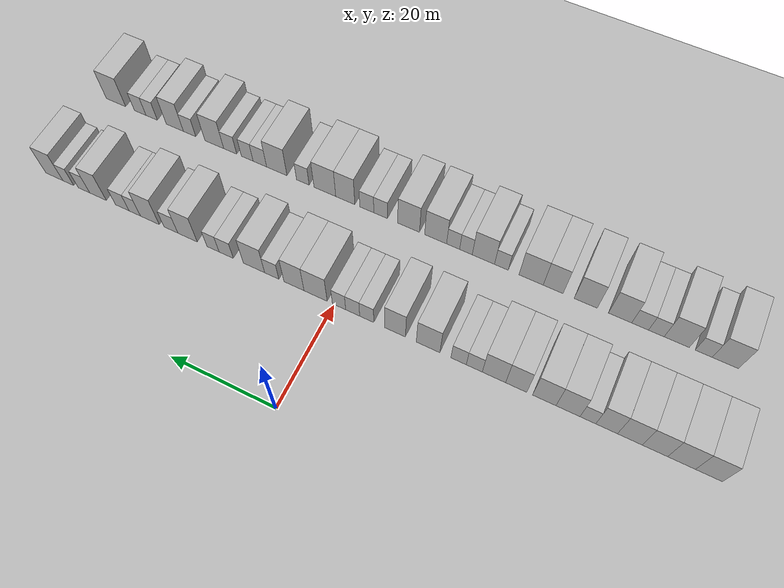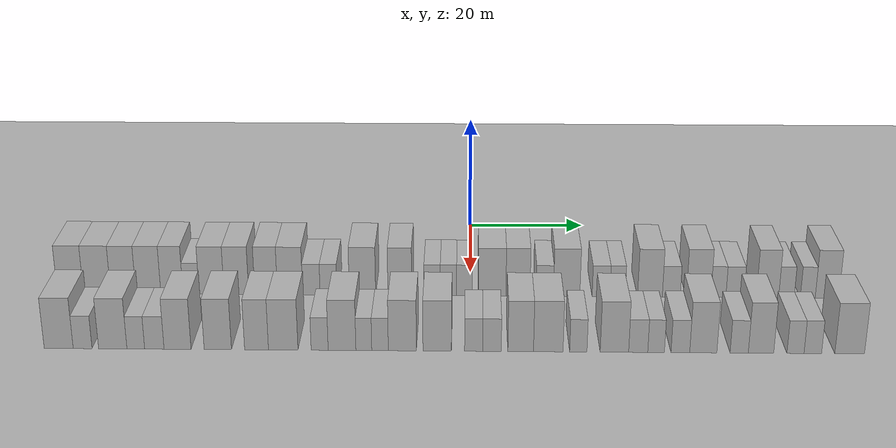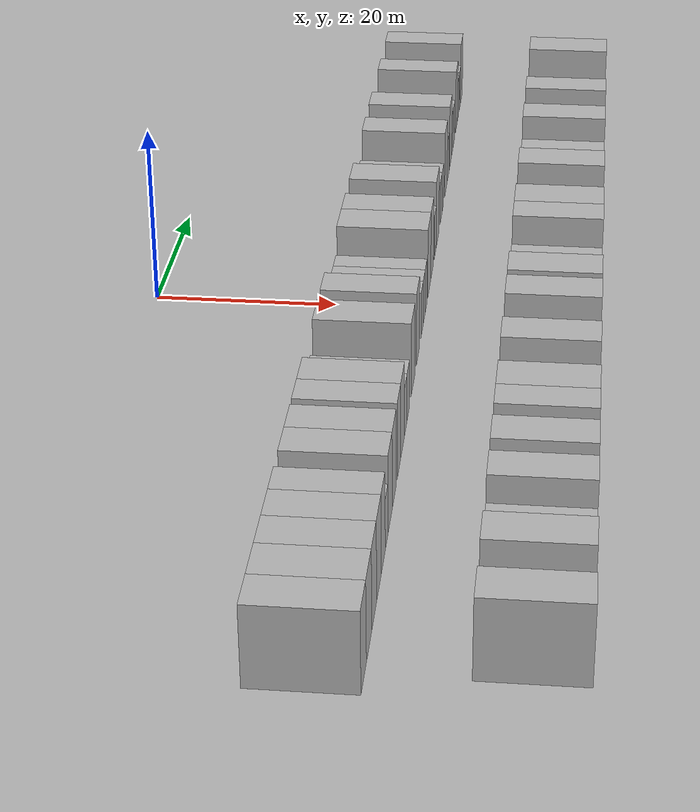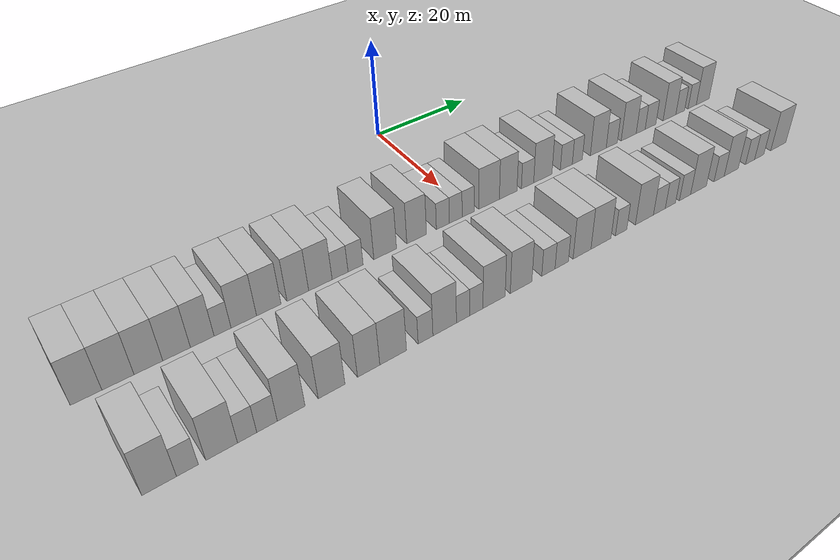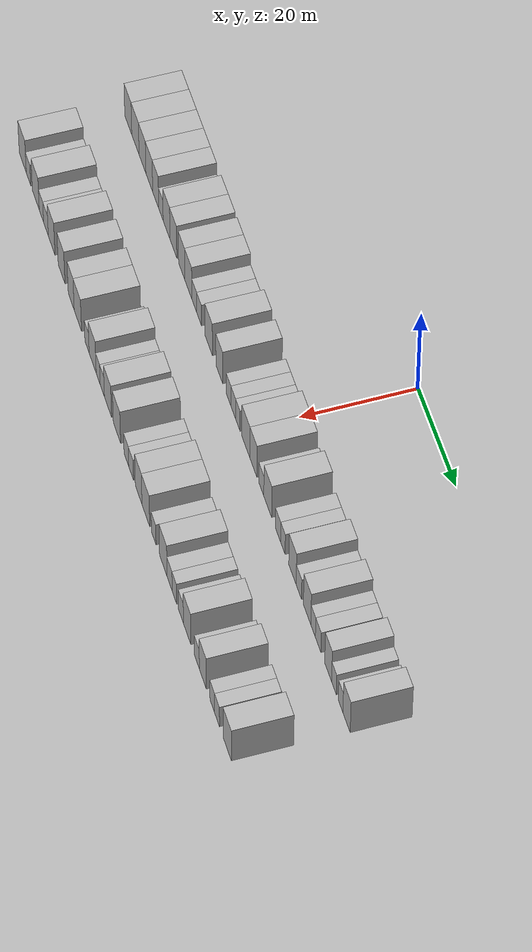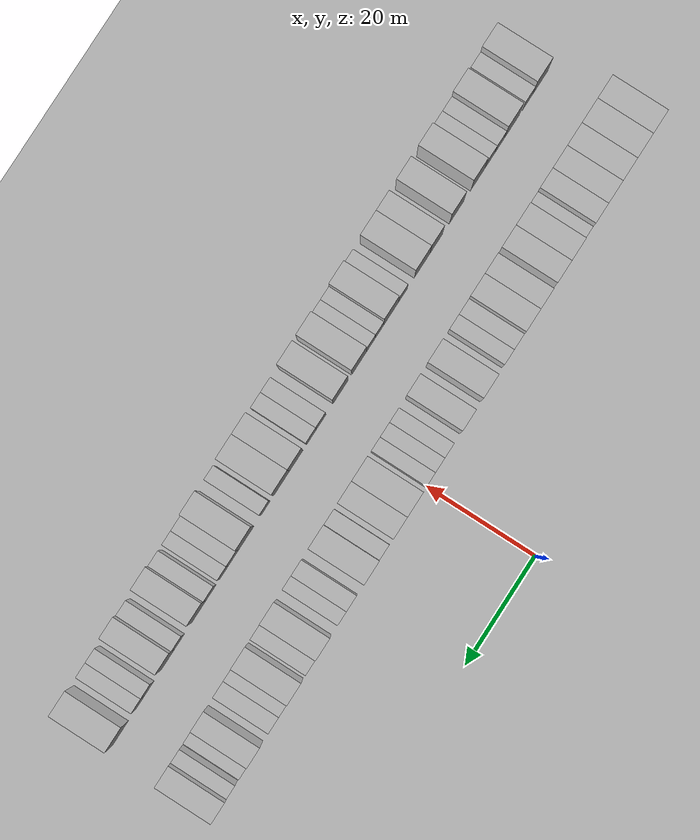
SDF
<sdf version="1.6">
 <world name="default">
  <include><name>ground_plane_1</name><uri>model://HANNAS_ground_plane</uri></include>
  <include>
   <name>ground_plane_2</name>
   <uri>model://HANNAS_ground_plane</uri>
   <pose>100 0 0  0 0 0</pose>
  </include>
  <model name="building_35">
   <static>1</static>
   <pose>25.0000 -65.4058 0 0.000000 0.000000 0.000000</pose>
   <link name="link">
    <pose>0 0 4.50 0 0 0</pose>
    <collision name="collision"><geometry><box><size>10.0000 4.2739 9.0000</size></box></geometry></collision>
    <visual name="visual">
     <cast_shadows>0</cast_shadows>
     <geometry><box><size>10.0000 4.2739 9.0000</size></box></geometry>
     <material>
      <script>
       <uri>model://HANNAS_wall/materials/scripts</uri>
       <uri>model://HANNAS_wall/materials/textures</uri>
       <name>vrc/HANNAS_wall</name>
      </script>
     </material>
    </visual>
   </link>
  </model>
  <model name="building_36">
   <static>1</static>
   <pose>25.0000 -61.0355 0 0.000000 0.000000 0.000000</pose>
   <link name="link">
    <pose>0 0 4.50 0 0 0</pose>
    <collision name="collision"><geometry><box><size>10.0000 4.4668 9.0000</size></box></geometry></collision>
    <visual name="visual">
     <cast_shadows>0</cast_shadows>
     <geometry><box><size>10.0000 4.4668 9.0000</size></box></geometry>
     <material>
      <script>
       <uri>model://HANNAS_wall/materials/scripts</uri>
       <uri>model://HANNAS_wall/materials/textures</uri>
       <name>vrc/HANNAS_wall</name>
      </script>
     </material>
    </visual>
   </link>
  </model>
  <model name="building_37">
   <static>1</static>
   <pose>25.0000 -56.7351 0 0.000000 0.000000 0.000000</pose>
   <link name="link">
    <pose>0 0 4.50 0 0 0</pose>
    <collision name="collision"><geometry><box><size>10.0000 4.1340 9.0000</size></box></geometry></collision>
    <visual name="visual">
     <cast_shadows>0</cast_shadows>
     <geometry><box><size>10.0000 4.1340 9.0000</size></box></geometry>
     <material>
      <script>
       <uri>model://HANNAS_wall/materials/scripts</uri>
       <uri>model://HANNAS_wall/materials/textures</uri>
       <name>vrc/HANNAS_wall</name>
      </script>
     </material>
    </visual>
   </link>
  </model>
  <model name="building_38">
   <static>1</static>
   <pose>25.0000 -52.6220 0 0.000000 0.000000 0.000000</pose>
   <link name="link">
    <pose>0 0 4.50 0 0 0</pose>
    <collision name="collision"><geometry><box><size>10.0000 4.0922 9.0000</size></box></geometry></collision>
    <visual name="visual">
     <cast_shadows>0</cast_shadows>
     <geometry><box><size>10.0000 4.0922 9.0000</size></box></geometry>
     <material>
      <script>
       <uri>model://HANNAS_wall/materials/scripts</uri>
       <uri>model://HANNAS_wall/materials/textures</uri>
       <name>vrc/HANNAS_wall</name>
      </script>
     </material>
    </visual>
   </link>
  </model>
  <model name="building_39">
   <static>1</static>
   <pose>25.0000 -48.7673 0 0.000000 0.000000 0.000000</pose>
   <link name="link">
    <pose>0 0 4.50 0 0 0</pose>
    <collision name="collision"><geometry><box><size>10.0000 3.6170 9.0000</size></box></geometry></collision>
    <visual name="visual">
     <cast_shadows>0</cast_shadows>
     <geometry><box><size>10.0000 3.6170 9.0000</size></box></geometry>
     <material>
      <script>
       <uri>model://HANNAS_wall/materials/scripts</uri>
       <uri>model://HANNAS_wall/materials/textures</uri>
       <name>vrc/HANNAS_wall</name>
      </script>
     </material>
    </visual>
   </link>
  </model>
  <model name="building_40">
   <static>1</static>
   <pose>25.0000 -45.6345 0 0.000000 0.000000 0.000000</pose>
   <link name="link">
    <pose>0 0 3.00 0 0 0</pose>
    <collision name="collision"><geometry><box><size>10.0000 2.6487 6.0000</size></box></geometry></collision>
    <visual name="visual">
     <cast_shadows>0</cast_shadows>
     <geometry><box><size>10.0000 2.6487 6.0000</size></box></geometry>
     <material>
      <script>
       <uri>model://HANNAS_wall/materials/scripts</uri>
       <uri>model://HANNAS_wall/materials/textures</uri>
       <name>vrc/HANNAS_wall</name>
      </script>
     </material>
    </visual>
   </link>
  </model>
  <model name="building_41">
   <static>1</static>
   <pose>25.0000 -42.2691 0 0.000000 0.000000 0.000000</pose>
   <link name="link">
    <pose>0 0 4.50 0 0 0</pose>
    <collision name="collision"><geometry><box><size>10.0000 4.0822 9.0000</size></box></geometry></collision>
    <visual name="visual">
     <cast_shadows>0</cast_shadows>
     <geometry><box><size>10.0000 4.0822 9.0000</size></box></geometry>
     <material>
      <script>
       <uri>model://HANNAS_wall/materials/scripts</uri>
       <uri>model://HANNAS_wall/materials/textures</uri>
       <name>vrc/HANNAS_wall</name>
      </script>
     </material>
    </visual>
   </link>
  </model>
  <model name="building_42">
   <static>1</static>
   <pose>25.0000 -38.2107 0 0.000000 0.000000 0.000000</pose>
   <link name="link">
    <pose>0 0 4.50 0 0 0</pose>
    <collision name="collision"><geometry><box><size>10.0000 4.0345 9.0000</size></box></geometry></collision>
    <visual name="visual">
     <cast_shadows>0</cast_shadows>
     <geometry><box><size>10.0000 4.0345 9.0000</size></box></geometry>
     <material>
      <script>
       <uri>model://HANNAS_wall/materials/scripts</uri>
       <uri>model://HANNAS_wall/materials/textures</uri>
       <name>vrc/HANNAS_wall</name>
      </script>
     </material>
    </visual>
   </link>
  </model>
  <model name="building_43">
   <static>1</static>
   <pose>25.0000 -33.3450 0 0.000000 0.000000 0.000000</pose>
   <link name="link">
    <pose>0 0 4.50 0 0 0</pose>
    <collision name="collision"><geometry><box><size>10.0000 3.6970 9.0000</size></box></geometry></collision>
    <visual name="visual">
     <cast_shadows>0</cast_shadows>
     <geometry><box><size>10.0000 3.6970 9.0000</size></box></geometry>
     <material>
      <script>
       <uri>model://HANNAS_wall/materials/scripts</uri>
       <uri>model://HANNAS_wall/materials/textures</uri>
       <name>vrc/HANNAS_wall</name>
      </script>
     </material>
    </visual>
   </link>
  </model>
  <model name="building_44">
   <static>1</static>
   <pose>25.0000 -29.4401 0 0.000000 0.000000 0.000000</pose>
   <link name="link">
    <pose>0 0 4.50 0 0 0</pose>
    <collision name="collision"><geometry><box><size>10.0000 4.1129 9.0000</size></box></geometry></collision>
    <visual name="visual">
     <cast_shadows>0</cast_shadows>
     <geometry><box><size>10.0000 4.1129 9.0000</size></box></geometry>
     <material>
      <script>
       <uri>model://HANNAS_wall/materials/scripts</uri>
       <uri>model://HANNAS_wall/materials/textures</uri>
       <name>vrc/HANNAS_wall</name>
      </script>
     </material>
    </visual>
   </link>
  </model>
  <model name="building_45">
   <static>1</static>
   <pose>25.0000 -25.9536 0 0.000000 0.000000 0.000000</pose>
   <link name="link">
    <pose>0 0 3.00 0 0 0</pose>
    <collision name="collision"><geometry><box><size>10.0000 2.8602 6.0000</size></box></geometry></collision>
    <visual name="visual">
     <cast_shadows>0</cast_shadows>
     <geometry><box><size>10.0000 2.8602 6.0000</size></box></geometry>
     <material>
      <script>
       <uri>model://HANNAS_wall/materials/scripts</uri>
       <uri>model://HANNAS_wall/materials/textures</uri>
       <name>vrc/HANNAS_wall</name>
      </script>
     </material>
    </visual>
   </link>
  </model>
  <model name="building_46">
   <static>1</static>
   <pose>25.0000 -23.1433 0 0.000000 0.000000 0.000000</pose>
   <link name="link">
    <pose>0 0 3.00 0 0 0</pose>
    <collision name="collision"><geometry><box><size>10.0000 2.7603 6.0000</size></box></geometry></collision>
    <visual name="visual">
     <cast_shadows>0</cast_shadows>
     <geometry><box><size>10.0000 2.7603 6.0000</size></box></geometry>
     <material>
      <script>
       <uri>model://HANNAS_wall/materials/scripts</uri>
       <uri>model://HANNAS_wall/materials/textures</uri>
       <name>vrc/HANNAS_wall</name>
      </script>
     </material>
    </visual>
   </link>
  </model>
  <model name="building_47">
   <static>1</static>
   <pose>25.0000 -17.6112 0 0.000000 0.000000 0.000000</pose>
   <link name="link">
    <pose>0 0 4.50 0 0 0</pose>
    <collision name="collision"><geometry><box><size>10.0000 4.3039 9.0000</size></box></geometry></collision>
    <visual name="visual">
     <cast_shadows>0</cast_shadows>
     <geometry><box><size>10.0000 4.3039 9.0000</size></box></geometry>
     <material>
      <script>
       <uri>model://HANNAS_wall/materials/scripts</uri>
       <uri>model://HANNAS_wall/materials/textures</uri>
       <name>vrc/HANNAS_wall</name>
      </script>
     </material>
    </visual>
   </link>
  </model>
  <model name="building_48">
   <static>1</static>
   <pose>25.0000 -11.5176 0 0.000000 0.000000 0.000000</pose>
   <link name="link">
    <pose>0 0 4.50 0 0 0</pose>
    <collision name="collision"><geometry><box><size>10.0000 3.8833 9.0000</size></box></geometry></collision>
    <visual name="visual">
     <cast_shadows>0</cast_shadows>
     <geometry><box><size>10.0000 3.8833 9.0000</size></box></geometry>
     <material>
      <script>
       <uri>model://HANNAS_wall/materials/scripts</uri>
       <uri>model://HANNAS_wall/materials/textures</uri>
       <name>vrc/HANNAS_wall</name>
      </script>
     </material>
    </visual>
   </link>
  </model>
  <model name="building_49">
   <static>1</static>
   <pose>25.0000 -6.2448 0 0.000000 0.000000 0.000000</pose>
   <link name="link">
    <pose>0 0 3.00 0 0 0</pose>
    <collision name="collision"><geometry><box><size>10.0000 2.6624 6.0000</size></box></geometry></collision>
    <visual name="visual">
     <cast_shadows>0</cast_shadows>
     <geometry><box><size>10.0000 2.6624 6.0000</size></box></geometry>
     <material>
      <script>
       <uri>model://HANNAS_wall/materials/scripts</uri>
       <uri>model://HANNAS_wall/materials/textures</uri>
       <name>vrc/HANNAS_wall</name>
      </script>
     </material>
    </visual>
   </link>
  </model>
  <model name="building_50">
   <static>1</static>
   <pose>25.0000 -3.5870 0 0.000000 0.000000 0.000000</pose>
   <link name="link">
    <pose>0 0 3.00 0 0 0</pose>
    <collision name="collision"><geometry><box><size>10.0000 2.6531 6.0000</size></box></geometry></collision>
    <visual name="visual">
     <cast_shadows>0</cast_shadows>
     <geometry><box><size>10.0000 2.6531 6.0000</size></box></geometry>
     <material>
      <script>
       <uri>model://HANNAS_wall/materials/scripts</uri>
       <uri>model://HANNAS_wall/materials/textures</uri>
       <name>vrc/HANNAS_wall</name>
      </script>
     </material>
    </visual>
   </link>
  </model>
  <model name="building_51">
   <static>1</static>
   <pose>25.0000 -0.9893 0 0.000000 0.000000 0.000000</pose>
   <link name="link">
    <pose>0 0 3.00 0 0 0</pose>
    <collision name="collision"><geometry><box><size>10.0000 2.5422 6.0000</size></box></geometry></collision>
    <visual name="visual">
     <cast_shadows>0</cast_shadows>
     <geometry><box><size>10.0000 2.5422 6.0000</size></box></geometry>
     <material>
      <script>
       <uri>model://HANNAS_wall/materials/scripts</uri>
       <uri>model://HANNAS_wall/materials/textures</uri>
       <name>vrc/HANNAS_wall</name>
      </script>
     </material>
    </visual>
   </link>
  </model>
  <model name="building_52">
   <static>1</static>
   <pose>25.0000 3.5239 0 0.000000 0.000000 0.000000</pose>
   <link name="link">
    <pose>0 0 4.50 0 0 0</pose>
    <collision name="collision"><geometry><box><size>10.0000 4.4843 9.0000</size></box></geometry></collision>
    <visual name="visual">
     <cast_shadows>0</cast_shadows>
     <geometry><box><size>10.0000 4.4843 9.0000</size></box></geometry>
     <material>
      <script>
       <uri>model://HANNAS_wall/materials/scripts</uri>
       <uri>model://HANNAS_wall/materials/textures</uri>
       <name>vrc/HANNAS_wall</name>
      </script>
     </material>
    </visual>
   </link>
  </model>
  <model name="building_53">
   <static>1</static>
   <pose>25.0000 7.7307 0 0.000000 0.000000 0.000000</pose>
   <link name="link">
    <pose>0 0 4.50 0 0 0</pose>
    <collision name="collision"><geometry><box><size>10.0000 3.9293 9.0000</size></box></geometry></collision>
    <visual name="visual">
     <cast_shadows>0</cast_shadows>
     <geometry><box><size>10.0000 3.9293 9.0000</size></box></geometry>
     <material>
      <script>
       <uri>model://HANNAS_wall/materials/scripts</uri>
       <uri>model://HANNAS_wall/materials/textures</uri>
       <name>vrc/HANNAS_wall</name>
      </script>
     </material>
    </visual>
   </link>
  </model>
  <model name="building_54">
   <static>1</static>
   <pose>25.0000 12.1050 0 0.000000 0.000000 0.000000</pose>
   <link name="link">
    <pose>0 0 3.00 0 0 0</pose>
    <collision name="collision"><geometry><box><size>10.0000 2.8193 6.0000</size></box></geometry></collision>
    <visual name="visual">
     <cast_shadows>0</cast_shadows>
     <geometry><box><size>10.0000 2.8193 6.0000</size></box></geometry>
     <material>
      <script>
       <uri>model://HANNAS_wall/materials/scripts</uri>
       <uri>model://HANNAS_wall/materials/textures</uri>
       <name>vrc/HANNAS_wall</name>
      </script>
     </material>
    </visual>
   </link>
  </model>
  <model name="building_55">
   <static>1</static>
   <pose>25.0000 15.6615 0 0.000000 0.000000 0.000000</pose>
   <link name="link">
    <pose>0 0 4.50 0 0 0</pose>
    <collision name="collision"><geometry><box><size>10.0000 4.2938 9.0000</size></box></geometry></collision>
    <visual name="visual">
     <cast_shadows>0</cast_shadows>
     <geometry><box><size>10.0000 4.2938 9.0000</size></box></geometry>
     <material>
      <script>
       <uri>model://HANNAS_wall/materials/scripts</uri>
       <uri>model://HANNAS_wall/materials/textures</uri>
       <name>vrc/HANNAS_wall</name>
      </script>
     </material>
    </visual>
   </link>
  </model>
  <model name="building_56">
   <static>1</static>
   <pose>25.0000 21.2589 0 0.000000 0.000000 0.000000</pose>
   <link name="link">
    <pose>0 0 3.00 0 0 0</pose>
    <collision name="collision"><geometry><box><size>10.0000 2.9010 6.0000</size></box></geometry></collision>
    <visual name="visual">
     <cast_shadows>0</cast_shadows>
     <geometry><box><size>10.0000 2.9010 6.0000</size></box></geometry>
     <material>
      <script>
       <uri>model://HANNAS_wall/materials/scripts</uri>
       <uri>model://HANNAS_wall/materials/textures</uri>
       <name>vrc/HANNAS_wall</name>
      </script>
     </material>
    </visual>
   </link>
  </model>
  <model name="building_57">
   <static>1</static>
   <pose>25.0000 23.9494 0 0.000000 0.000000 0.000000</pose>
   <link name="link">
    <pose>0 0 3.00 0 0 0</pose>
    <collision name="collision"><geometry><box><size>10.0000 2.4800 6.0000</size></box></geometry></collision>
    <visual name="visual">
     <cast_shadows>0</cast_shadows>
     <geometry><box><size>10.0000 2.4800 6.0000</size></box></geometry>
     <material>
      <script>
       <uri>model://HANNAS_wall/materials/scripts</uri>
       <uri>model://HANNAS_wall/materials/textures</uri>
       <name>vrc/HANNAS_wall</name>
      </script>
     </material>
    </visual>
   </link>
  </model>
  <model name="building_58">
   <static>1</static>
   <pose>25.0000 29.2018 0 0.000000 0.000000 0.000000</pose>
   <link name="link">
    <pose>0 0 4.50 0 0 0</pose>
    <collision name="collision"><geometry><box><size>10.0000 4.0249 9.0000</size></box></geometry></collision>
    <visual name="visual">
     <cast_shadows>0</cast_shadows>
     <geometry><box><size>10.0000 4.0249 9.0000</size></box></geometry>
     <material>
      <script>
       <uri>model://HANNAS_wall/materials/scripts</uri>
       <uri>model://HANNAS_wall/materials/textures</uri>
       <name>vrc/HANNAS_wall</name>
      </script>
     </material>
    </visual>
   </link>
  </model>
  <model name="building_59">
   <static>1</static>
   <pose>25.0000 32.6660 0 0.000000 0.000000 0.000000</pose>
   <link name="link">
    <pose>0 0 3.00 0 0 0</pose>
    <collision name="collision"><geometry><box><size>10.0000 2.9033 6.0000</size></box></geometry></collision>
    <visual name="visual">
     <cast_shadows>0</cast_shadows>
     <geometry><box><size>10.0000 2.9033 6.0000</size></box></geometry>
     <material>
      <script>
       <uri>model://HANNAS_wall/materials/scripts</uri>
       <uri>model://HANNAS_wall/materials/textures</uri>
       <name>vrc/HANNAS_wall</name>
      </script>
     </material>
    </visual>
   </link>
  </model>
  <model name="building_60">
   <static>1</static>
   <pose>25.0000 37.1094 0 0.000000 0.000000 0.000000</pose>
   <link name="link">
    <pose>0 0 4.50 0 0 0</pose>
    <collision name="collision"><geometry><box><size>10.0000 3.9836 9.0000</size></box></geometry></collision>
    <visual name="visual">
     <cast_shadows>0</cast_shadows>
     <geometry><box><size>10.0000 3.9836 9.0000</size></box></geometry>
     <material>
      <script>
       <uri>model://HANNAS_wall/materials/scripts</uri>
       <uri>model://HANNAS_wall/materials/textures</uri>
       <name>vrc/HANNAS_wall</name>
      </script>
     </material>
    </visual>
   </link>
  </model>
  <model name="building_61">
   <static>1</static>
   <pose>25.0000 40.3164 0 0.000000 0.000000 0.000000</pose>
   <link name="link">
    <pose>0 0 3.00 0 0 0</pose>
    <collision name="collision"><geometry><box><size>10.0000 2.4304 6.0000</size></box></geometry></collision>
    <visual name="visual">
     <cast_shadows>0</cast_shadows>
     <geometry><box><size>10.0000 2.4304 6.0000</size></box></geometry>
     <material>
      <script>
       <uri>model://HANNAS_wall/materials/scripts</uri>
       <uri>model://HANNAS_wall/materials/textures</uri>
       <name>vrc/HANNAS_wall</name>
      </script>
     </material>
    </visual>
   </link>
  </model>
  <model name="building_62">
   <static>1</static>
   <pose>25.0000 43.0006 0 0.000000 0.000000 0.000000</pose>
   <link name="link">
    <pose>0 0 3.00 0 0 0</pose>
    <collision name="collision"><geometry><box><size>10.0000 2.9379 6.0000</size></box></geometry></collision>
    <visual name="visual">
     <cast_shadows>0</cast_shadows>
     <geometry><box><size>10.0000 2.9379 6.0000</size></box></geometry>
     <material>
      <script>
       <uri>model://HANNAS_wall/materials/scripts</uri>
       <uri>model://HANNAS_wall/materials/textures</uri>
       <name>vrc/HANNAS_wall</name>
      </script>
     </material>
    </visual>
   </link>
  </model>
  <model name="building_63">
   <static>1</static>
   <pose>25.0000 48.2834 0 0.000000 0.000000 0.000000</pose>
   <link name="link">
    <pose>0 0 4.50 0 0 0</pose>
    <collision name="collision"><geometry><box><size>10.0000 3.6277 9.0000</size></box></geometry></collision>
    <visual name="visual">
     <cast_shadows>0</cast_shadows>
     <geometry><box><size>10.0000 3.6277 9.0000</size></box></geometry>
     <material>
      <script>
       <uri>model://HANNAS_wall/materials/scripts</uri>
       <uri>model://HANNAS_wall/materials/textures</uri>
       <name>vrc/HANNAS_wall</name>
      </script>
     </material>
    </visual>
   </link>
  </model>
  <model name="building_64">
   <static>1</static>
   <pose>25.0000 51.3525 0 0.000000 0.000000 0.000000</pose>
   <link name="link">
    <pose>0 0 3.00 0 0 0</pose>
    <collision name="collision"><geometry><box><size>10.0000 2.5106 6.0000</size></box></geometry></collision>
    <visual name="visual">
     <cast_shadows>0</cast_shadows>
     <geometry><box><size>10.0000 2.5106 6.0000</size></box></geometry>
     <material>
      <script>
       <uri>model://HANNAS_wall/materials/scripts</uri>
       <uri>model://HANNAS_wall/materials/textures</uri>
       <name>vrc/HANNAS_wall</name>
      </script>
     </material>
    </visual>
   </link>
  </model>
  <model name="building_65">
   <static>1</static>
   <pose>25.0000 54.8151 0 0.000000 0.000000 0.000000</pose>
   <link name="link">
    <pose>0 0 3.00 0 0 0</pose>
    <collision name="collision"><geometry><box><size>10.0000 2.4147 6.0000</size></box></geometry></collision>
    <visual name="visual">
     <cast_shadows>0</cast_shadows>
     <geometry><box><size>10.0000 2.4147 6.0000</size></box></geometry>
     <material>
      <script>
       <uri>model://HANNAS_wall/materials/scripts</uri>
       <uri>model://HANNAS_wall/materials/textures</uri>
       <name>vrc/HANNAS_wall</name>
      </script>
     </material>
    </visual>
   </link>
  </model>
  <model name="building_66">
   <static>1</static>
   <pose>25.0000 57.9305 0 0.000000 0.000000 0.000000</pose>
   <link name="link">
    <pose>0 0 4.50 0 0 0</pose>
    <collision name="collision"><geometry><box><size>10.0000 3.8160 9.0000</size></box></geometry></collision>
    <visual name="visual">
     <cast_shadows>0</cast_shadows>
     <geometry><box><size>10.0000 3.8160 9.0000</size></box></geometry>
     <material>
      <script>
       <uri>model://HANNAS_wall/materials/scripts</uri>
       <uri>model://HANNAS_wall/materials/textures</uri>
       <name>vrc/HANNAS_wall</name>
      </script>
     </material>
    </visual>
   </link>
  </model>
  <model name="building_127">
   <static>1</static>
   <pose>44.0000 -62.6533 0 0.000000 0.000000 0.000000</pose>
   <link name="link">
    <pose>0 0 4.50 0 0 0</pose>
    <collision name="collision"><geometry><box><size>10.0000 4.4266 9.0000</size></box></geometry></collision>
    <visual name="visual">
     <cast_shadows>0</cast_shadows>
     <geometry><box><size>10.0000 4.4266 9.0000</size></box></geometry>
     <material>
      <script>
       <uri>model://HANNAS_wall/materials/scripts</uri>
       <uri>model://HANNAS_wall/materials/textures</uri>
       <name>vrc/HANNAS_wall</name>
      </script>
     </material>
    </visual>
   </link>
  </model>
  <model name="building_128">
   <static>1</static>
   <pose>44.0000 -59.0018 0 0.000000 0.000000 0.000000</pose>
   <link name="link">
    <pose>0 0 3.00 0 0 0</pose>
    <collision name="collision"><geometry><box><size>10.0000 2.8765 6.0000</size></box></geometry></collision>
    <visual name="visual">
     <cast_shadows>0</cast_shadows>
     <geometry><box><size>10.0000 2.8765 6.0000</size></box></geometry>
     <material>
      <script>
       <uri>model://HANNAS_wall/materials/scripts</uri>
       <uri>model://HANNAS_wall/materials/textures</uri>
       <name>vrc/HANNAS_wall</name>
      </script>
     </material>
    </visual>
   </link>
  </model>
  <model name="building_129">
   <static>1</static>
   <pose>44.0000 -54.4012 0 0.000000 0.000000 0.000000</pose>
   <link name="link">
    <pose>0 0 4.50 0 0 0</pose>
    <collision name="collision"><geometry><box><size>10.0000 4.3247 9.0000</size></box></geometry></collision>
    <visual name="visual">
     <cast_shadows>0</cast_shadows>
     <geometry><box><size>10.0000 4.3247 9.0000</size></box></geometry>
     <material>
      <script>
       <uri>model://HANNAS_wall/materials/scripts</uri>
       <uri>model://HANNAS_wall/materials/textures</uri>
       <name>vrc/HANNAS_wall</name>
      </script>
     </material>
    </visual>
   </link>
  </model>
  <model name="building_130">
   <static>1</static>
   <pose>44.0000 -50.8875 0 0.000000 0.000000 0.000000</pose>
   <link name="link">
    <pose>0 0 3.00 0 0 0</pose>
    <collision name="collision"><geometry><box><size>10.0000 2.7025 6.0000</size></box></geometry></collision>
    <visual name="visual">
     <cast_shadows>0</cast_shadows>
     <geometry><box><size>10.0000 2.7025 6.0000</size></box></geometry>
     <material>
      <script>
       <uri>model://HANNAS_wall/materials/scripts</uri>
       <uri>model://HANNAS_wall/materials/textures</uri>
       <name>vrc/HANNAS_wall</name>
      </script>
     </material>
    </visual>
   </link>
  </model>
  <model name="building_131">
   <static>1</static>
   <pose>44.0000 -48.0584 0 0.000000 0.000000 0.000000</pose>
   <link name="link">
    <pose>0 0 3.00 0 0 0</pose>
    <collision name="collision"><geometry><box><size>10.0000 2.9557 6.0000</size></box></geometry></collision>
    <visual name="visual">
     <cast_shadows>0</cast_shadows>
     <geometry><box><size>10.0000 2.9557 6.0000</size></box></geometry>
     <material>
      <script>
       <uri>model://HANNAS_wall/materials/scripts</uri>
       <uri>model://HANNAS_wall/materials/textures</uri>
       <name>vrc/HANNAS_wall</name>
      </script>
     </material>
    </visual>
   </link>
  </model>
  <model name="building_132">
   <static>1</static>
   <pose>44.0000 -44.5231 0 0.000000 0.000000 0.000000</pose>
   <link name="link">
    <pose>0 0 4.50 0 0 0</pose>
    <collision name="collision"><geometry><box><size>10.0000 4.1150 9.0000</size></box></geometry></collision>
    <visual name="visual">
     <cast_shadows>0</cast_shadows>
     <geometry><box><size>10.0000 4.1150 9.0000</size></box></geometry>
     <material>
      <script>
       <uri>model://HANNAS_wall/materials/scripts</uri>
       <uri>model://HANNAS_wall/materials/textures</uri>
       <name>vrc/HANNAS_wall</name>
      </script>
     </material>
    </visual>
   </link>
  </model>
  <model name="building_133">
   <static>1</static>
   <pose>44.0000 -38.3868 0 0.000000 0.000000 0.000000</pose>
   <link name="link">
    <pose>0 0 4.50 0 0 0</pose>
    <collision name="collision"><geometry><box><size>10.0000 4.1574 9.0000</size></box></geometry></collision>
    <visual name="visual">
     <cast_shadows>0</cast_shadows>
     <geometry><box><size>10.0000 4.1574 9.0000</size></box></geometry>
     <material>
      <script>
       <uri>model://HANNAS_wall/materials/scripts</uri>
       <uri>model://HANNAS_wall/materials/textures</uri>
       <name>vrc/HANNAS_wall</name>
      </script>
     </material>
    </visual>
   </link>
  </model>
  <model name="building_134">
   <static>1</static>
   <pose>44.0000 -32.4917 0 0.000000 0.000000 0.000000</pose>
   <link name="link">
    <pose>0 0 4.50 0 0 0</pose>
    <collision name="collision"><geometry><box><size>10.0000 3.6329 9.0000</size></box></geometry></collision>
    <visual name="visual">
     <cast_shadows>0</cast_shadows>
     <geometry><box><size>10.0000 3.6329 9.0000</size></box></geometry>
     <material>
      <script>
       <uri>model://HANNAS_wall/materials/scripts</uri>
       <uri>model://HANNAS_wall/materials/textures</uri>
       <name>vrc/HANNAS_wall</name>
      </script>
     </material>
    </visual>
   </link>
  </model>
  <model name="building_135">
   <static>1</static>
   <pose>44.0000 -28.4306 0 0.000000 0.000000 0.000000</pose>
   <link name="link">
    <pose>0 0 4.50 0 0 0</pose>
    <collision name="collision"><geometry><box><size>10.0000 4.4893 9.0000</size></box></geometry></collision>
    <visual name="visual">
     <cast_shadows>0</cast_shadows>
     <geometry><box><size>10.0000 4.4893 9.0000</size></box></geometry>
     <material>
      <script>
       <uri>model://HANNAS_wall/materials/scripts</uri>
       <uri>model://HANNAS_wall/materials/textures</uri>
       <name>vrc/HANNAS_wall</name>
      </script>
     </material>
    </visual>
   </link>
  </model>
  <model name="building_136">
   <static>1</static>
   <pose>44.0000 -22.8930 0 0.000000 0.000000 0.000000</pose>
   <link name="link">
    <pose>0 0 3.00 0 0 0</pose>
    <collision name="collision"><geometry><box><size>10.0000 2.5858 6.0000</size></box></geometry></collision>
    <visual name="visual">
     <cast_shadows>0</cast_shadows>
     <geometry><box><size>10.0000 2.5858 6.0000</size></box></geometry>
     <material>
      <script>
       <uri>model://HANNAS_wall/materials/scripts</uri>
       <uri>model://HANNAS_wall/materials/textures</uri>
       <name>vrc/HANNAS_wall</name>
      </script>
     </material>
    </visual>
   </link>
  </model>
  <model name="building_137">
   <static>1</static>
   <pose>44.0000 -19.4909 0 0.000000 0.000000 0.000000</pose>
   <link name="link">
    <pose>0 0 4.50 0 0 0</pose>
    <collision name="collision"><geometry><box><size>10.0000 4.2184 9.0000</size></box></geometry></collision>
    <visual name="visual">
     <cast_shadows>0</cast_shadows>
     <geometry><box><size>10.0000 4.2184 9.0000</size></box></geometry>
     <material>
      <script>
       <uri>model://HANNAS_wall/materials/scripts</uri>
       <uri>model://HANNAS_wall/materials/textures</uri>
       <name>vrc/HANNAS_wall</name>
      </script>
     </material>
    </visual>
   </link>
  </model>
  <model name="building_138">
   <static>1</static>
   <pose>44.0000 -16.1784 0 0.000000 0.000000 0.000000</pose>
   <link name="link">
    <pose>0 0 3.00 0 0 0</pose>
    <collision name="collision"><geometry><box><size>10.0000 2.4067 6.0000</size></box></geometry></collision>
    <visual name="visual">
     <cast_shadows>0</cast_shadows>
     <geometry><box><size>10.0000 2.4067 6.0000</size></box></geometry>
     <material>
      <script>
       <uri>model://HANNAS_wall/materials/scripts</uri>
       <uri>model://HANNAS_wall/materials/textures</uri>
       <name>vrc/HANNAS_wall</name>
      </script>
     </material>
    </visual>
   </link>
  </model>
  <model name="building_139">
   <static>1</static>
   <pose>44.0000 -13.7182 0 0.000000 0.000000 0.000000</pose>
   <link name="link">
    <pose>0 0 3.00 0 0 0</pose>
    <collision name="collision"><geometry><box><size>10.0000 2.5136 6.0000</size></box></geometry></collision>
    <visual name="visual">
     <cast_shadows>0</cast_shadows>
     <geometry><box><size>10.0000 2.5136 6.0000</size></box></geometry>
     <material>
      <script>
       <uri>model://HANNAS_wall/materials/scripts</uri>
       <uri>model://HANNAS_wall/materials/textures</uri>
       <name>vrc/HANNAS_wall</name>
      </script>
     </material>
    </visual>
   </link>
  </model>
  <model name="building_140">
   <static>1</static>
   <pose>44.0000 -10.3295 0 0.000000 0.000000 0.000000</pose>
   <link name="link">
    <pose>0 0 4.50 0 0 0</pose>
    <collision name="collision"><geometry><box><size>10.0000 4.2638 9.0000</size></box></geometry></collision>
    <visual name="visual">
     <cast_shadows>0</cast_shadows>
     <geometry><box><size>10.0000 4.2638 9.0000</size></box></geometry>
     <material>
      <script>
       <uri>model://HANNAS_wall/materials/scripts</uri>
       <uri>model://HANNAS_wall/materials/textures</uri>
       <name>vrc/HANNAS_wall</name>
      </script>
     </material>
    </visual>
   </link>
  </model>
  <model name="building_141">
   <static>1</static>
   <pose>44.0000 -5.0391 0 0.000000 0.000000 0.000000</pose>
   <link name="link">
    <pose>0 0 4.50 0 0 0</pose>
    <collision name="collision"><geometry><box><size>10.0000 4.3171 9.0000</size></box></geometry></collision>
    <visual name="visual">
     <cast_shadows>0</cast_shadows>
     <geometry><box><size>10.0000 4.3171 9.0000</size></box></geometry>
     <material>
      <script>
       <uri>model://HANNAS_wall/materials/scripts</uri>
       <uri>model://HANNAS_wall/materials/textures</uri>
       <name>vrc/HANNAS_wall</name>
      </script>
     </material>
    </visual>
   </link>
  </model>
  <model name="building_142">
   <static>1</static>
   <pose>44.0000 0.4915 0 0.000000 0.000000 0.000000</pose>
   <link name="link">
    <pose>0 0 3.00 0 0 0</pose>
    <collision name="collision"><geometry><box><size>10.0000 2.7442 6.0000</size></box></geometry></collision>
    <visual name="visual">
     <cast_shadows>0</cast_shadows>
     <geometry><box><size>10.0000 2.7442 6.0000</size></box></geometry>
     <material>
      <script>
       <uri>model://HANNAS_wall/materials/scripts</uri>
       <uri>model://HANNAS_wall/materials/textures</uri>
       <name>vrc/HANNAS_wall</name>
      </script>
     </material>
    </visual>
   </link>
  </model>
  <model name="building_143">
   <static>1</static>
   <pose>44.0000 3.2715 0 0.000000 0.000000 0.000000</pose>
   <link name="link">
    <pose>0 0 3.00 0 0 0</pose>
    <collision name="collision"><geometry><box><size>10.0000 2.8158 6.0000</size></box></geometry></collision>
    <visual name="visual">
     <cast_shadows>0</cast_shadows>
     <geometry><box><size>10.0000 2.8158 6.0000</size></box></geometry>
     <material>
      <script>
       <uri>model://HANNAS_wall/materials/scripts</uri>
       <uri>model://HANNAS_wall/materials/textures</uri>
       <name>vrc/HANNAS_wall</name>
      </script>
     </material>
    </visual>
   </link>
  </model>
  <model name="building_144">
   <static>1</static>
   <pose>44.0000 7.6220 0 0.000000 0.000000 0.000000</pose>
   <link name="link">
    <pose>0 0 4.50 0 0 0</pose>
    <collision name="collision"><geometry><box><size>10.0000 3.8852 9.0000</size></box></geometry></collision>
    <visual name="visual">
     <cast_shadows>0</cast_shadows>
     <geometry><box><size>10.0000 3.8852 9.0000</size></box></geometry>
     <material>
      <script>
       <uri>model://HANNAS_wall/materials/scripts</uri>
       <uri>model://HANNAS_wall/materials/textures</uri>
       <name>vrc/HANNAS_wall</name>
      </script>
     </material>
    </visual>
   </link>
  </model>
  <model name="building_145">
   <static>1</static>
   <pose>44.0000 11.8023 0 0.000000 0.000000 0.000000</pose>
   <link name="link">
    <pose>0 0 4.50 0 0 0</pose>
    <collision name="collision"><geometry><box><size>10.0000 4.4753 9.0000</size></box></geometry></collision>
    <visual name="visual">
     <cast_shadows>0</cast_shadows>
     <geometry><box><size>10.0000 4.4753 9.0000</size></box></geometry>
     <material>
      <script>
       <uri>model://HANNAS_wall/materials/scripts</uri>
       <uri>model://HANNAS_wall/materials/textures</uri>
       <name>vrc/HANNAS_wall</name>
      </script>
     </material>
    </visual>
   </link>
  </model>
  <model name="building_146">
   <static>1</static>
   <pose>44.0000 16.3515 0 0.000000 0.000000 0.000000</pose>
   <link name="link">
    <pose>0 0 3.00 0 0 0</pose>
    <collision name="collision"><geometry><box><size>10.0000 2.6232 6.0000</size></box></geometry></collision>
    <visual name="visual">
     <cast_shadows>0</cast_shadows>
     <geometry><box><size>10.0000 2.6232 6.0000</size></box></geometry>
     <material>
      <script>
       <uri>model://HANNAS_wall/materials/scripts</uri>
       <uri>model://HANNAS_wall/materials/textures</uri>
       <name>vrc/HANNAS_wall</name>
      </script>
     </material>
    </visual>
   </link>
  </model>
  <model name="building_147">
   <static>1</static>
   <pose>44.0000 21.8171 0 0.000000 0.000000 0.000000</pose>
   <link name="link">
    <pose>0 0 4.50 0 0 0</pose>
    <collision name="collision"><geometry><box><size>10.0000 4.3079 9.0000</size></box></geometry></collision>
    <visual name="visual">
     <cast_shadows>0</cast_shadows>
     <geometry><box><size>10.0000 4.3079 9.0000</size></box></geometry>
     <material>
      <script>
       <uri>model://HANNAS_wall/materials/scripts</uri>
       <uri>model://HANNAS_wall/materials/textures</uri>
       <name>vrc/HANNAS_wall</name>
      </script>
     </material>
    </visual>
   </link>
  </model>
  <model name="building_148">
   <static>1</static>
   <pose>44.0000 25.4172 0 0.000000 0.000000 0.000000</pose>
   <link name="link">
    <pose>0 0 3.00 0 0 0</pose>
    <collision name="collision"><geometry><box><size>10.0000 2.8924 6.0000</size></box></geometry></collision>
    <visual name="visual">
     <cast_shadows>0</cast_shadows>
     <geometry><box><size>10.0000 2.8924 6.0000</size></box></geometry>
     <material>
      <script>
       <uri>model://HANNAS_wall/materials/scripts</uri>
       <uri>model://HANNAS_wall/materials/textures</uri>
       <name>vrc/HANNAS_wall</name>
      </script>
     </material>
    </visual>
   </link>
  </model>
  <model name="building_149">
   <static>1</static>
   <pose>44.0000 28.1198 0 0.000000 0.000000 0.000000</pose>
   <link name="link">
    <pose>0 0 3.00 0 0 0</pose>
    <collision name="collision"><geometry><box><size>10.0000 2.5127 6.0000</size></box></geometry></collision>
    <visual name="visual">
     <cast_shadows>0</cast_shadows>
     <geometry><box><size>10.0000 2.5127 6.0000</size></box></geometry>
     <material>
      <script>
       <uri>model://HANNAS_wall/materials/scripts</uri>
       <uri>model://HANNAS_wall/materials/textures</uri>
       <name>vrc/HANNAS_wall</name>
      </script>
     </material>
    </visual>
   </link>
  </model>
  <model name="building_150">
   <static>1</static>
   <pose>44.0000 31.7882 0 0.000000 0.000000 0.000000</pose>
   <link name="link">
    <pose>0 0 3.00 0 0 0</pose>
    <collision name="collision"><geometry><box><size>10.0000 2.8241 6.0000</size></box></geometry></collision>
    <visual name="visual">
     <cast_shadows>0</cast_shadows>
     <geometry><box><size>10.0000 2.8241 6.0000</size></box></geometry>
     <material>
      <script>
       <uri>model://HANNAS_wall/materials/scripts</uri>
       <uri>model://HANNAS_wall/materials/textures</uri>
       <name>vrc/HANNAS_wall</name>
      </script>
     </material>
    </visual>
   </link>
  </model>
  <model name="building_151">
   <static>1</static>
   <pose>44.0000 35.2520 0 0.000000 0.000000 0.000000</pose>
   <link name="link">
    <pose>0 0 4.50 0 0 0</pose>
    <collision name="collision"><geometry><box><size>10.0000 4.1035 9.0000</size></box></geometry></collision>
    <visual name="visual">
     <cast_shadows>0</cast_shadows>
     <geometry><box><size>10.0000 4.1035 9.0000</size></box></geometry>
     <material>
      <script>
       <uri>model://HANNAS_wall/materials/scripts</uri>
       <uri>model://HANNAS_wall/materials/textures</uri>
       <name>vrc/HANNAS_wall</name>
      </script>
     </material>
    </visual>
   </link>
  </model>
  <model name="building_152">
   <static>1</static>
   <pose>44.0000 40.6779 0 0.000000 0.000000 0.000000</pose>
   <link name="link">
    <pose>0 0 3.00 0 0 0</pose>
    <collision name="collision"><geometry><box><size>10.0000 2.7485 6.0000</size></box></geometry></collision>
    <visual name="visual">
     <cast_shadows>0</cast_shadows>
     <geometry><box><size>10.0000 2.7485 6.0000</size></box></geometry>
     <material>
      <script>
       <uri>model://HANNAS_wall/materials/scripts</uri>
       <uri>model://HANNAS_wall/materials/textures</uri>
       <name>vrc/HANNAS_wall</name>
      </script>
     </material>
    </visual>
   </link>
  </model>
  <model name="building_153">
   <static>1</static>
   <pose>44.0000 43.9709 0 0.000000 0.000000 0.000000</pose>
   <link name="link">
    <pose>0 0 4.50 0 0 0</pose>
    <collision name="collision"><geometry><box><size>10.0000 3.8375 9.0000</size></box></geometry></collision>
    <visual name="visual">
     <cast_shadows>0</cast_shadows>
     <geometry><box><size>10.0000 3.8375 9.0000</size></box></geometry>
     <material>
      <script>
       <uri>model://HANNAS_wall/materials/scripts</uri>
       <uri>model://HANNAS_wall/materials/textures</uri>
       <name>vrc/HANNAS_wall</name>
      </script>
     </material>
    </visual>
   </link>
  </model>
  <model name="building_154">
   <static>1</static>
   <pose>44.0000 49.1773 0 0.000000 0.000000 0.000000</pose>
   <link name="link">
    <pose>0 0 3.00 0 0 0</pose>
    <collision name="collision"><geometry><box><size>10.0000 2.5753 6.0000</size></box></geometry></collision>
    <visual name="visual">
     <cast_shadows>0</cast_shadows>
     <geometry><box><size>10.0000 2.5753 6.0000</size></box></geometry>
     <material>
      <script>
       <uri>model://HANNAS_wall/materials/scripts</uri>
       <uri>model://HANNAS_wall/materials/textures</uri>
       <name>vrc/HANNAS_wall</name>
      </script>
     </material>
    </visual>
   </link>
  </model>
  <model name="building_155">
   <static>1</static>
   <pose>44.0000 51.7853 0 0.000000 0.000000 0.000000</pose>
   <link name="link">
    <pose>0 0 3.00 0 0 0</pose>
    <collision name="collision"><geometry><box><size>10.0000 2.6407 6.0000</size></box></geometry></collision>
    <visual name="visual">
     <cast_shadows>0</cast_shadows>
     <geometry><box><size>10.0000 2.6407 6.0000</size></box></geometry>
     <material>
      <script>
       <uri>model://HANNAS_wall/materials/scripts</uri>
       <uri>model://HANNAS_wall/materials/textures</uri>
       <name>vrc/HANNAS_wall</name>
      </script>
     </material>
    </visual>
   </link>
  </model>
  <model name="building_156">
   <static>1</static>
   <pose>44.0000 57.3388 0 0.000000 0.000000 0.000000</pose>
   <link name="link">
    <pose>0 0 4.50 0 0 0</pose>
    <collision name="collision"><geometry><box><size>10.0000 4.4661 9.0000</size></box></geometry></collision>
    <visual name="visual">
     <cast_shadows>0</cast_shadows>
     <geometry><box><size>10.0000 4.4661 9.0000</size></box></geometry>
     <material>
      <script>
       <uri>model://HANNAS_wall/materials/scripts</uri>
       <uri>model://HANNAS_wall/materials/textures</uri>
       <name>vrc/HANNAS_wall</name>
      </script>
     </material>
    </visual>
   </link>
  </model>
 </world>
</sdf>
